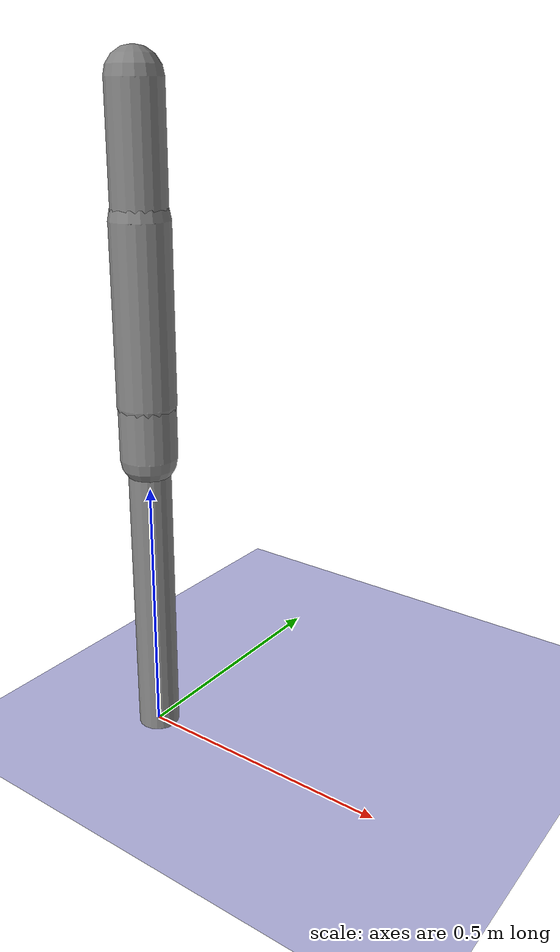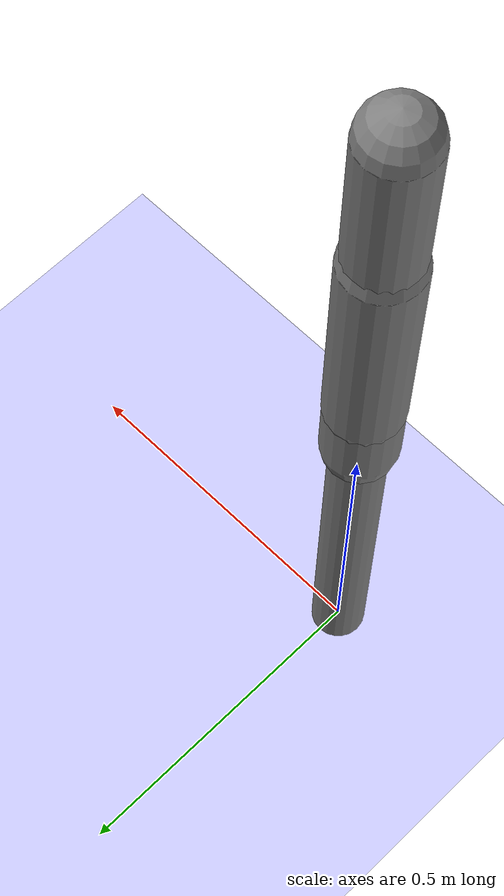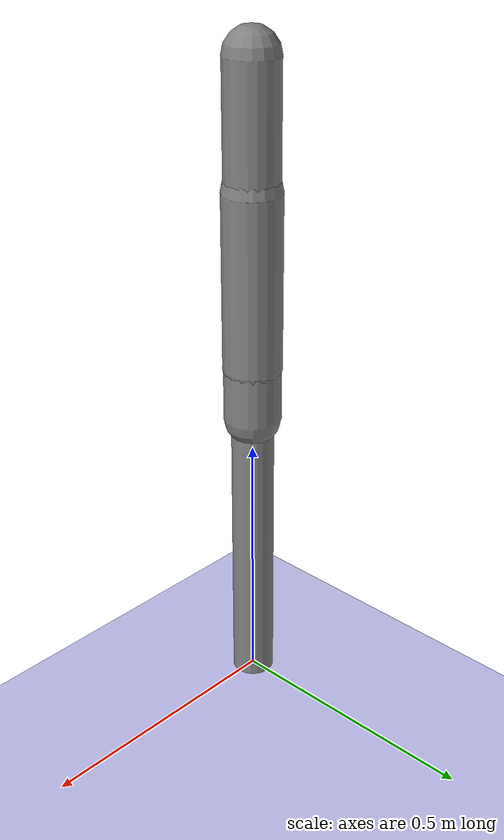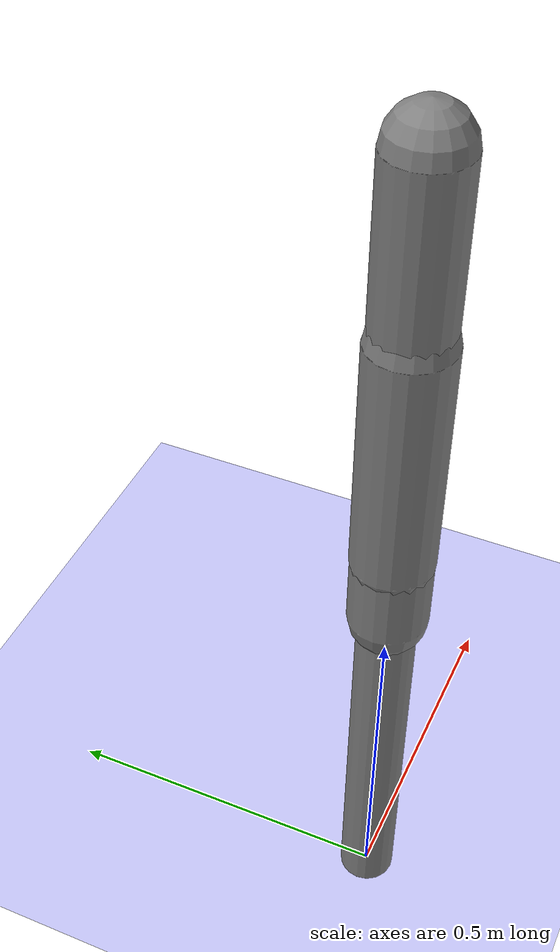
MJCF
<?xml version='1.0' encoding='UTF-8'?>
<mujoco model="robot_model">
  <worldbody>
    <light name="light" pos="0 -3 10" dir="0 0.5 -1" diffuse=".8 .8 .8" specular="0.1 0.1 0.1"/>
    <geom name="floor" type="plane" size="10.0 10.0 0.1" pos="0 0 0" rgba="0.8 0.8 1 1" contype="2" conaffinity="1"/>
    <body name="limb0" pos="0 0 0">
      <geom type="capsule" fromto="0 0 0 0 0 0.6" size="0.04" density="1200.0" contype="1" conaffinity="2"/>
      <site type="sphere" size="0.01" name="limb0_site0" pos="0 0 0.5332966851792164"/>
      <site type="sphere" size="0.01" name="limb0_site1" pos="0 0 0.5650236933179318"/>
      <freejoint name="limb0_root"/>
      <body name="limb1" pos="0 0 0.5332966851792164">
        <geom type="capsule" fromto="0 0 0 0 0 0.2108483557747831" size="0.03176305440673138" density="688.7771406626807" contype="1" conaffinity="2"/>
        <site type="sphere" size="0.01" name="limb1_site0" pos="0 0 0.1315488757351795"/>
        <site type="sphere" size="0.01" name="limb1_site1" pos="0 0 0.20255461164896735"/>
        <body name="limb2" pos="0 0 0.1315488757351795">
          <geom type="capsule" fromto="0 0 0 0 0 0.3275892204410617" size="0.05495976002937755" density="729.9579150506644" contype="1" conaffinity="2"/>
          <joint name="joint_limb1_limb2_0" type="hinge" axis="0 1 0" range="-79.19027832141104 79.19027832141104" damping="5.0"/>
        </body>
        <body name="limb3" pos="0 0 0.20255461164896735">
          <geom type="capsule" fromto="0 0 0 0 0 0.4886525017141072" size="0.02730849030649112" density="1118.1587480940386" contype="1" conaffinity="2"/>
          <site type="sphere" size="0.01" name="limb3_site0" pos="0 0 0.2148602362279738"/>
          <body name="limb4" pos="0 0 0.2148602362279738">
            <geom type="capsule" fromto="0 0 0 0 0 0.2702323108022217" size="0.05077679122345154" density="1107.6977661945734" contype="1" conaffinity="2"/>
            <joint name="joint_limb3_limb4_0" type="hinge" axis="0 1 0" range="-105.79506732382342 105.79506732382342" damping="5.0"/>
          </body>
          <joint name="joint_limb1_limb3_0" type="hinge" axis="0 1 0" range="-80.38696577407528 80.38696577407528" damping="5.0"/>
        </body>
        <joint name="joint_limb0_limb1_0" type="hinge" axis="0 1 0" range="-98.3708742457562 98.3708742457562" damping="5.0"/>
      </body>
      <body name="limb5" pos="0 0 0.5650236933179318">
        <geom type="capsule" fromto="0 0 0 0 0 0.13252947652278277" size="0.05372058858359962" density="1100.1826029615775" contype="1" conaffinity="2"/>
        <site type="sphere" size="0.01" name="limb5_site0" pos="0 0 0.0"/>
        <body name="limb6" pos="0 0 0.0">
          <geom type="capsule" fromto="0 0 0 0 0 0.3297643075211269" size="0.03183707388037653" density="514.4016674114245" contype="1" conaffinity="2"/>
          <joint name="joint_limb5_limb6_0" type="hinge" axis="1 0 0" range="-55.42184628795283 55.42184628795283" damping="5.0"/>
        </body>
        <joint name="joint_limb0_limb5_0" type="hinge" axis="0 1 0" range="-46.186401585393725 46.186401585393725" damping="5.0"/>
      </body>
    </body>
  </worldbody>
  <actuator>
    <position name="position_actuator_joint_limb0_limb1_0" joint="joint_limb0_limb1_0" gear="1.2084304557007752" inheritrange="1" kp="100.0"/>
    <position name="position_actuator_joint_limb1_limb2_0" joint="joint_limb1_limb2_0" gear="1.0104857860709995" inheritrange="1" kp="100.0"/>
    <position name="position_actuator_joint_limb1_limb3_0" joint="joint_limb1_limb3_0" gear="1.272740550353963" inheritrange="1" kp="100.0"/>
    <position name="position_actuator_joint_limb3_limb4_0" joint="joint_limb3_limb4_0" gear="1.0060890082801364" inheritrange="1" kp="100.0"/>
    <position name="position_actuator_joint_limb0_limb5_0" joint="joint_limb0_limb5_0" gear="0.5181521235082891" inheritrange="1" kp="100.0"/>
    <position name="position_actuator_joint_limb5_limb6_0" joint="joint_limb5_limb6_0" gear="1.3038517495512207" inheritrange="1" kp="100.0"/>
  </actuator>
</mujoco>
